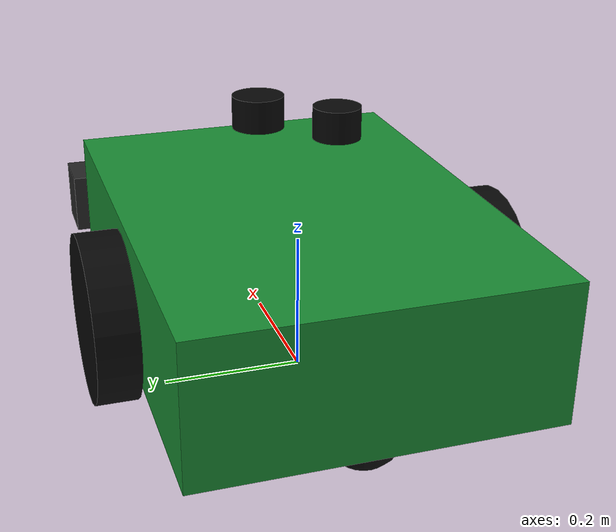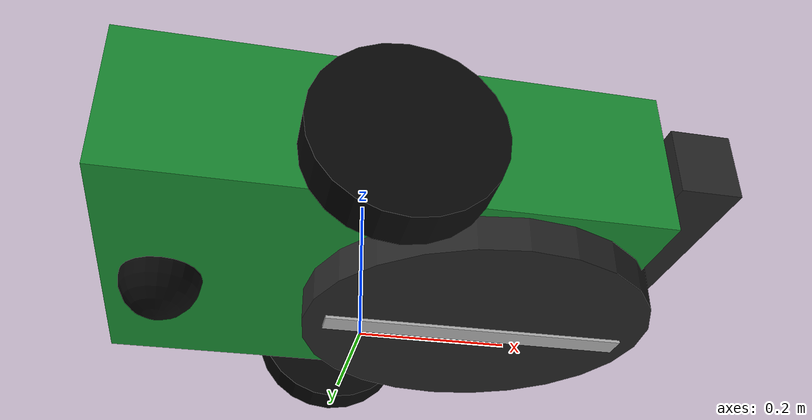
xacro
<?xml version="1.0"?>
<robot name="my_robot" xmlns:xacro="http://www.ros.org/wiki/xacro">

    <xacro:include filename="$(find mower4_description)/urdf/common_properties.xacro" />
    <xacro:include filename="$(find mower4_description)/urdf/robot_base.xacro" />
    <xacro:include filename="$(find mower4_description)/urdf/robot_base_gazebo.xacro" />

</robot>

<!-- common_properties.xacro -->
<robot xmlns:xacro="http://www.ros.org/wiki/xacro">

<!-- Colors -->
  <material name="green">
    <color rgba="0.10 0.55 0.20 1.0"/>
  </material>

  <material name="dark_gray">
    <color rgba="0.15 0.15 0.15 1.0"/>
  </material>

  <material name="black">
    <color rgba="0.03 0.03 0.03 1.0"/>
  </material>

  <material name="silver">
    <color rgba="0.70 0.70 0.70 1.0"/>
  </material>

<!--Inertia-->
   <xacro:macro name="box_inertia" params="m x y z o_xyz o_rpy">
        <inertial>
            <mass value="${m}" />
            <origin xyz="${o_xyz}" rpy="${o_rpy}" />
            <inertia ixx="${(m/12) * (z*z + y*y)}" ixy="0" ixz="0"
                    iyy="${(m/12) * (x*x + z*z)}" iyz="0"
                    izz="${(m/12) * (x*x + y*y)}" />
        </inertial>
    </xacro:macro>

    <xacro:macro name="cylinder_inertia" params="m r l o_xyz o_rpy">
        <inertial>
            <mass value="${m}" />
            <origin xyz="${o_xyz}" rpy="${o_rpy}" />
            <inertia ixx="${(m/12) * (3*r*r + l*l)}" ixy="0" ixz="0"
                    iyy="${(m/12) * (3*r*r + l*l)}" iyz="0"
                    izz="${(m/2) * (r*r)}" />
        </inertial>
    </xacro:macro>

    <xacro:macro name="sphere_inertia" params="m r o_xyz o_rpy">
        <inertial>
            <mass value="${m}" />
            <origin xyz="${o_xyz}" rpy="${o_rpy}" />
            <inertia ixx="${(2/5) * m * r * r}" ixy="0" ixz="0"
                    iyy="${(2/5) * m * r * r}" iyz="0"
                    izz="${(2/5) * m * r * r}" />
        </inertial>
    </xacro:macro>

  <!--Wheel Setting-->
    <xacro:macro name="wheel_link" params="prefix">
        <link name="${prefix}_wheel_link">
            <visual>
                <geometry>
                    <cylinder radius="${wheel_radius}" length="${wheel_length}" />
                </geometry>
                <origin xyz="0 0 0" rpy="${pi / 2.0} 0 0" />
                <material name="black" />
            </visual>

            <collision>
                <geometry>
                    <cylinder radius="${wheel_radius}" length="${wheel_length}" />
                </geometry>
                <origin xyz="0 0 0" rpy="${pi / 2.0} 0 0" />
            </collision>

            <xacro:cylinder_inertia m="1.5" r="${wheel_radius}" l="${wheel_length}"
                                o_xyz="0 0 0" o_rpy="${pi / 2.0} 0 0" />

        </link>
    </xacro:macro>
</robot>

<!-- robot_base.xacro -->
<robot xmlns:xacro="http://www.ros.org/wiki/xacro">

    <xacro:property name="base_length" value="0.7" />
    <xacro:property name="base_width" value="0.5" />
    <xacro:property name="base_height" value="0.2" />

    <xacro:property name="wheel_radius" value="0.12" />
    <xacro:property name="wheel_length" value="0.06" />

    <xacro:property name="deck_radius" value="0.24" />
    <xacro:property name="deck_length" value="0.08" />

    <xacro:property name="blade_length" value="0.42"/>
    <xacro:property name="blade_width" value="0.035"/>
    <xacro:property name="blade_height" value="0.008"/>

    <xacro:property name="bumper_length" value="0.08"/>
    <xacro:property name="bumper_width" value="0.54"/>
    <xacro:property name="bumper_height" value="0.09"/>

    <xacro:property name="base_z_offset" value="0.16"/>
    <xacro:property name="base_com_x_offset" value="-0.10"/>

    <xacro:property name="caster_radius" value="0.055"/>
    <xacro:property name="caster_x_offset" value="-0.27"/>

    <xacro:property name="deck_offset_x" value="0.16"/>
    <xacro:property name="deck_offset_z" value="0.055"/>

    <xacro:property name="lidar_radius" value="0.04"/>
    <xacro:property name="lidar_length" value="0.05"/>
    <xacro:property name="lidar_offset_x" value="0.20"/>
    <xacro:property name="lidar_offset_z" value="0.33"/>

    <xacro:property name="imu_offset_x" value="0.0"/>
    <xacro:property name="imu_offset_z" value="0.18"/>

    <xacro:property name="gps_radius" value="0.03"/>
    <xacro:property name="gps_length" value="0.04"/>
    <xacro:property name="gps_offset_x" value="-0.15"/>
    <xacro:property name="gps_offset_z" value="0.42"/>

    <!-- Ground reference frame -->
    <link name="base_footprint" />

    <!-- Main chassis -->
    <link name="base_link">
        <visual>
            <geometry>
                <box size="${base_length} ${base_width} ${base_height}" />
            </geometry>
            <origin xyz="0 0 ${base_z_offset}" rpy="0 0 0" />
            <material name="green" />
        </visual>

        <collision>
            <geometry>
                <box size="${base_length} ${base_width} ${base_height}"/>
            </geometry>
            <origin xyz="0 0 ${base_z_offset}" rpy="0 0 0"/>
        </collision>

        <!-- CoM shifted rearward (battery/motor pack toward the back) to counterbalance the front-mounted deck/blade/bumper and keep the rear caster loaded -->
        <xacro:box_inertia m="18.0" x="${base_length}" y="${base_width}" z="${base_height}"
                           o_xyz="${base_com_x_offset} 0 ${base_z_offset}" o_rpy="0 0 0" />
    </link>

    <joint name="base_joint" type="fixed">
        <parent link="base_footprint" />
        <child link="base_link" />
        <origin xyz="0 0 0" rpy="0 0 0" />
    </joint>

    <!--Right Wheel-->
    <xacro:wheel_link prefix="right" />

    <joint name="base_right_wheel_joint" type="continuous">
        <parent link="base_link" />
        <child link="right_wheel_link" />
        <origin xyz="0 ${-(base_width + wheel_length) / 2.0} ${wheel_radius}" rpy="0 0 0" />
        <axis xyz="0 1 0" />
    </joint>

    <!--Left Wheel-->
    <xacro:wheel_link prefix="left" />

    <joint name="base_left_wheel_joint" type="continuous">
        <parent link="base_link" />
        <child link="left_wheel_link" />
        <origin xyz="0 ${(base_width + wheel_length) / 2.0} ${wheel_radius}" rpy="0 0 0" />
        <axis xyz="0 1 0" />
    </joint>

    <!--Caster Wheel-->
    <link name="caster_wheel_link">
        <visual>
            <geometry>
                <sphere radius="${caster_radius}" />
            </geometry>
            <origin xyz="0 0 0" rpy="0 0 0" />
            <material name="black" />
        </visual>

        <collision>
            <geometry>
                <sphere radius="${caster_radius}" />
            </geometry>
            <origin xyz="0 0 0" rpy="0 0 0" />
        </collision>

        <xacro:sphere_inertia m="1.0" r="${caster_radius}"
                              o_xyz="0 0 0" o_rpy="0 0 0" />
    </link>

    <joint name="base_caster_wheel_joint" type="fixed">
        <parent link="base_link" />
        <child link="caster_wheel_link" />
        <origin xyz="${caster_x_offset} 0 ${caster_radius}" rpy="0 0 0" />
    </joint>

    <!-- Mower deck -->
    <link name="mower_deck_link">
        <visual>
            <origin xyz="${deck_offset_x} 0 ${deck_offset_z}" rpy="0 0 0"/>
            <geometry>
                <cylinder radius="${deck_radius}" length="${deck_length}"/>
            </geometry>
            <material name="dark_gray"/>
        </visual>

        <collision>
            <origin xyz="${deck_offset_x} 0 ${deck_offset_z}" rpy="0 0 0"/>
            <geometry>
                <cylinder radius="${deck_radius}" length="${deck_length}"/>
            </geometry>
        </collision>

        <xacro:cylinder_inertia m="3.0" r="${deck_radius}" l="${deck_length}"
                                o_xyz="${deck_offset_x} 0 ${deck_offset_z}" o_rpy="0 0 0" />

    </link>

    <joint name="mower_deck_joint" type="fixed">
        <parent link="base_link"/>
        <child link="mower_deck_link"/>
        <origin xyz="0 0 0" rpy="0 0 0"/>
    </joint>

    <!-- Rotating blade -->
    <link name="blade_link">
        <visual>
            <origin xyz="0 0 0" rpy="0 0 0"/>
            <geometry>
                <box size="${blade_length} ${blade_width} ${blade_height}"/>
            </geometry>
            <material name="silver"/>
        </visual>

        <collision>
            <origin xyz="0 0 0" rpy="0 0 0"/>
            <geometry>
                <box size="${blade_length} ${blade_width} ${blade_height}"/>
            </geometry>
        </collision>

        <xacro:box_inertia m="0.8" x="${blade_length}" y="${blade_width}" z="${blade_height}"
                           o_xyz="0 0 0" o_rpy="0 0 0" />
    </link>

    <joint name="blade_joint" type="continuous">
        <parent link="mower_deck_link"/>
        <child link="blade_link"/>
        <origin xyz="${deck_offset_x} 0 0.015" rpy="0 0 0"/>
        <axis xyz="0 0 1"/>
    </joint>

    <!-- Simple front bumper -->
    <link name="front_bumper_link">
        <visual>
            <geometry>
                <box size="${bumper_length} ${bumper_width} ${bumper_height}"/>
            </geometry>
            <material name="dark_gray"/>
        </visual>

        <collision>
            <geometry>
                <box size="${bumper_length} ${bumper_width} ${bumper_height}"/>
            </geometry>
        </collision>
        <xacro:box_inertia m="1.0" x="${bumper_length}" y="${bumper_width}" z="${bumper_height}"
                           o_xyz="0 0 0" o_rpy="0 0 0" />

    </link>

    <joint name="front_bumper_joint" type="fixed">
        <parent link="base_link"/>
        <child link="front_bumper_link"/>
        <origin xyz="0.39 0 0.15" rpy="0 0 0"/>
    </joint>

    <!-- Lidar for costmap obstacle detection -->
    <link name="lidar_link">
        <visual>
            <geometry>
                <cylinder radius="${lidar_radius}" length="${lidar_length}"/>
            </geometry>
            <material name="black"/>
        </visual>

        <collision>
            <geometry>
                <cylinder radius="${lidar_radius}" length="${lidar_length}"/>
            </geometry>
        </collision>

        <xacro:cylinder_inertia m="0.15" r="${lidar_radius}" l="${lidar_length}"
                                o_xyz="0 0 0" o_rpy="0 0 0" />
    </link>

    <joint name="lidar_joint" type="fixed">
        <parent link="base_link"/>
        <child link="lidar_link"/>
        <origin xyz="${lidar_offset_x} 0 ${lidar_offset_z}" rpy="0 0 0"/>
    </joint>

    <!-- IMU — gives an absolute, world-referenced yaw so navsat_transform_node
        and the global EKF can align GPS with the robot's heading -->
    <link name="imu_link">
        <visual>
            <geometry>
                <box size="0.03 0.03 0.02"/>
            </geometry>
            <material name="black"/>
        </visual>
        <collision>
            <geometry>
                <box size="0.03 0.03 0.02"/>
            </geometry>
        </collision>
        <xacro:box_inertia m="0.05" x="0.03" y="0.03" z="0.02"
                        o_xyz="0 0 0" o_rpy="0 0 0" />
    </link>

    <joint name="imu_joint" type="fixed">
        <parent link="base_link"/>
        <child link="imu_link"/>
        <origin xyz="${imu_offset_x} 0 ${imu_offset_z}" rpy="0 0 0"/>
    </joint>

    <!-- GPS antenna, mounted clear of the chassis for an open sky view -->
    <link name="gps_link">
        <visual>
            <geometry>
                <cylinder radius="${gps_radius}" length="${gps_length}"/>
            </geometry>
            <material name="black"/>
        </visual>
        <collision>
            <geometry>
                <cylinder radius="${gps_radius}" length="${gps_length}"/>
            </geometry>
        </collision>
        <xacro:cylinder_inertia m="0.05" r="${gps_radius}" l="${gps_length}"
                                o_xyz="0 0 0" o_rpy="0 0 0" />
    </link>

    <joint name="gps_joint" type="fixed">
        <parent link="base_link"/>
        <child link="gps_link"/>
        <origin xyz="${gps_offset_x} 0 ${gps_offset_z}" rpy="0 0 0"/>
    </joint>

</robot>
